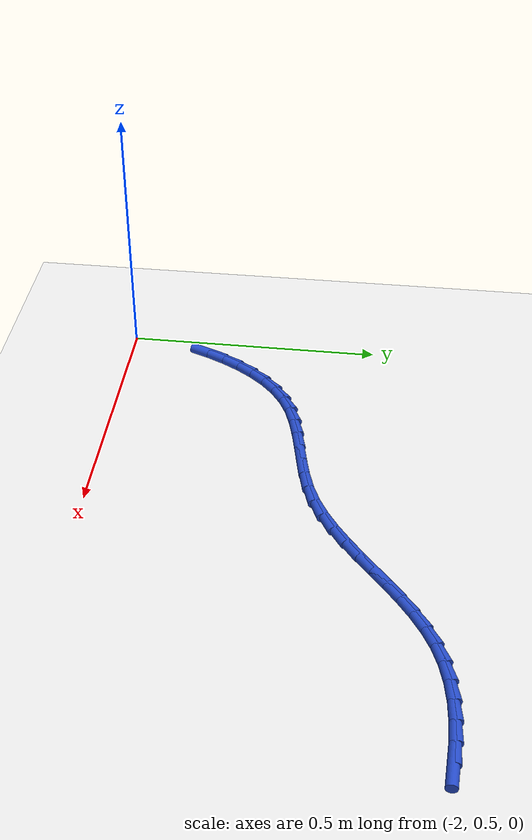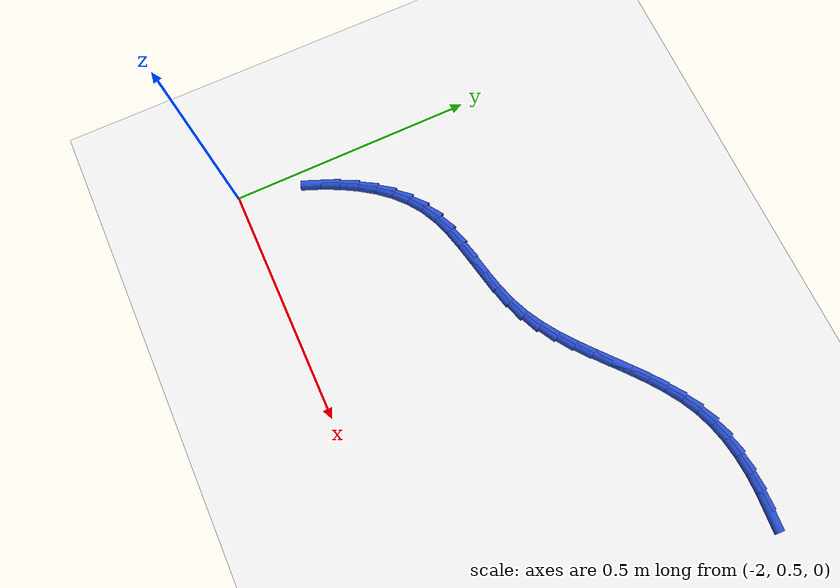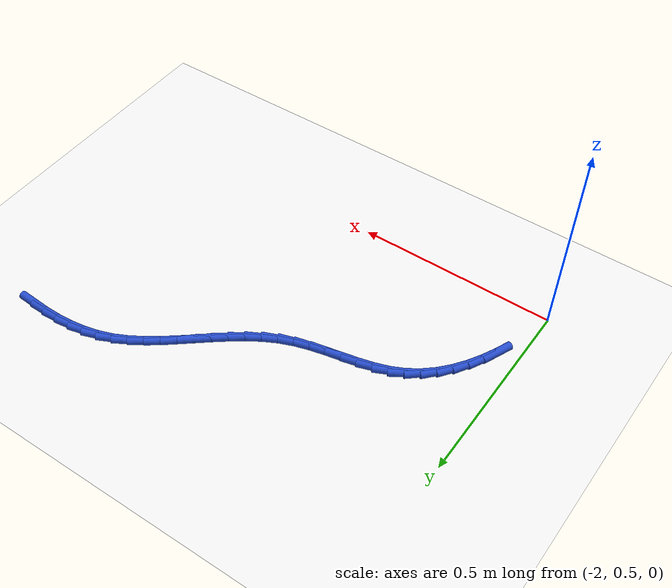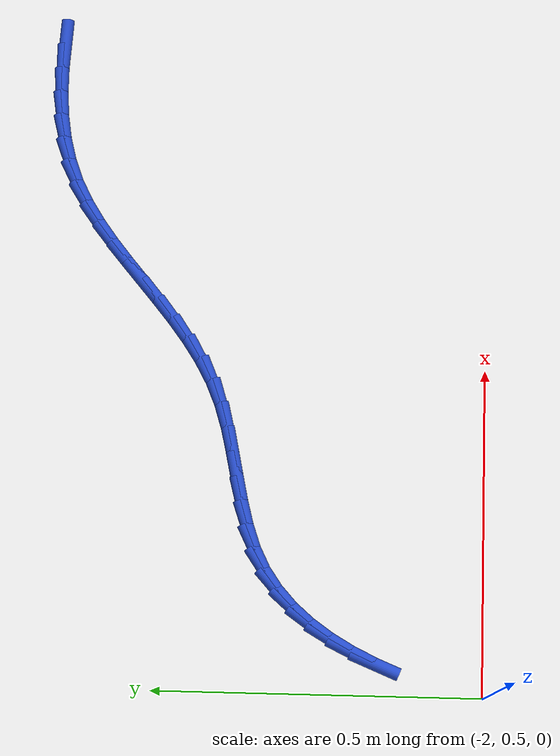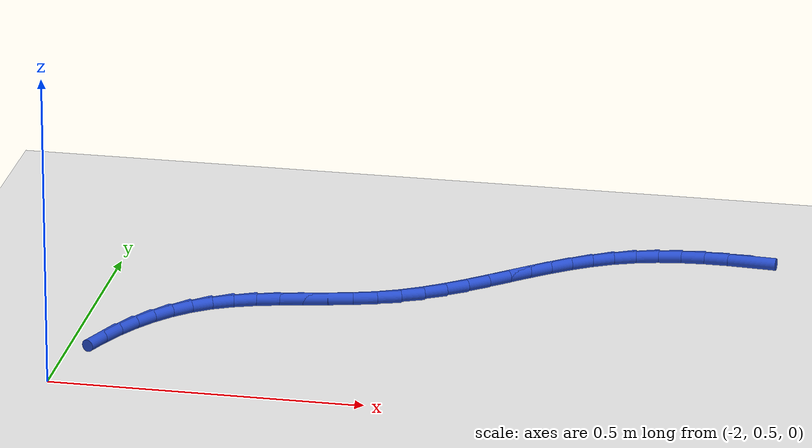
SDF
<sdf version="1.6">
 <world name="default">
  <model name="ground_plane">
   <static>1</static>
   <link name="link">
    <collision name="collision">
     <geometry><plane><normal>0 0 1</normal><size>100 100</size></plane></geometry>
     <surface><friction><ode><mu>100</mu><mu2>50</mu2></ode></friction></surface>
    </collision>
    <visual name="visual">
     <cast_shadows>0</cast_shadows>
     <geometry><plane><normal>0 0 1</normal><size>100 100</size></plane></geometry>
     <material>
      <script><uri>file://media/materials/scripts/gazebo.material</uri><name>Gazebo/WhiteGlow</name></script>
     </material>
    </visual>
   </link>
  </model>
  <model name="line">
   <link name="link_44">
    <pose>-0.9954234387250263 1.1660764728798085 0.01 0 1.57 -0.06486166840234169</pose>
    <collision name="collision">
     <geometry><cylinder><radius>0.01</radius><length>0.08</length></cylinder></geometry>
    </collision>
    <visual name="visual">
     <material>
      <script><name>Gazebo/Blue</name><uri>file://media/materials/scripts/gazebo.material</uri></script>
     </material>
     <geometry><cylinder><radius>0.01</radius><length>0.08</length></cylinder></geometry>
    </visual>
   </link>
   <link name="link_45">
    <pose>-1.0344334840674019 1.1686102837800652 0.01 0 1.57 -0.0035502411233002303</pose>
    <collision name="collision">
     <geometry><cylinder><radius>0.01</radius><length>0.08</length></cylinder></geometry>
    </collision>
    <visual name="visual">
     <material>
      <script><name>Gazebo/Blue</name><uri>file://media/materials/scripts/gazebo.material</uri></script>
     </material>
     <geometry><cylinder><radius>0.01</radius><length>0.08</length></cylinder></geometry>
    </visual>
   </link>
   <link name="link_46">
    <pose>-1.0730044384614992 1.1687472205438472 0.01 0 1.57 0.06829844971645511</pose>
    <collision name="collision">
     <geometry><cylinder><radius>0.01</radius><length>0.08</length></cylinder></geometry>
    </collision>
    <visual name="visual">
     <material>
      <script><name>Gazebo/Blue</name><uri>file://media/materials/scripts/gazebo.material</uri></script>
     </material>
     <geometry><cylinder><radius>0.01</radius><length>0.08</length></cylinder></geometry>
    </visual>
   </link>
   <link name="link_47">
    <pose>-1.1108783768783137 1.166156459656727 0.01 0 1.57 0.15184051075123225</pose>
    <collision name="collision">
     <geometry><cylinder><radius>0.01</radius><length>0.08</length></cylinder></geometry>
    </collision>
    <visual name="visual">
     <material>
      <script><name>Gazebo/Blue</name><uri>file://media/materials/scripts/gazebo.material</uri></script>
     </material>
     <geometry><cylinder><radius>0.01</radius><length>0.08</length></cylinder></geometry>
    </visual>
   </link>
   <link name="link_48">
    <pose>-1.1477973742888428 1.1605071776042777 0.01 0 1.57 0.24793115189143936</pose>
    <collision name="collision">
     <geometry><cylinder><radius>0.01</radius><length>0.08</length></cylinder></geometry>
    </collision>
    <visual name="visual">
     <material>
      <script><name>Gazebo/Blue</name><uri>file://media/materials/scripts/gazebo.material</uri></script>
     </material>
     <geometry><cylinder><radius>0.01</radius><length>0.08</length></cylinder></geometry>
    </visual>
   </link>
   <link name="link_49">
    <pose>-1.1835035056640846 1.1514685508720721 0.01 0 1.57 0.3567264596219374</pose>
    <collision name="collision">
     <geometry><cylinder><radius>0.01</radius><length>0.08</length></cylinder></geometry>
    </collision>
    <visual name="visual">
     <material>
      <script><name>Gazebo/Blue</name><uri>file://media/materials/scripts/gazebo.material</uri></script>
     </material>
     <geometry><cylinder><radius>0.01</radius><length>0.08</length></cylinder></geometry>
    </visual>
   </link>
   <link name="link_50">
    <pose>-1.2177389878769347 1.1387100101199863 0.01 0 1.57 0.4695098181031871</pose>
    <collision name="collision">
     <geometry><cylinder><radius>0.01</radius><length>0.08</length></cylinder></geometry>
    </collision>
    <visual name="visual">
     <material>
      <script><name>Gazebo/Blue</name><uri>file://media/materials/scripts/gazebo.material</uri></script>
     </material>
     <geometry><cylinder><radius>0.01</radius><length>0.08</length></cylinder></geometry>
    </visual>
   </link>
   <link name="link_51">
    <pose>-1.2503837736342907 1.1221476980645322 0.01 0 1.57 0.5623052165219564</pose>
    <collision name="collision">
     <geometry><cylinder><radius>0.01</radius><length>0.08</length></cylinder></geometry>
    </collision>
    <visual name="visual">
     <material>
      <script><name>Gazebo/Blue</name><uri>file://media/materials/scripts/gazebo.material</uri></script>
     </material>
     <geometry><cylinder><radius>0.01</radius><length>0.08</length></cylinder></geometry>
    </visual>
   </link>
   <link name="link_52">
    <pose>-1.2817127892395068 1.102405233069398 0.01 0 1.57 0.6308195380504196</pose>
    <collision name="collision">
     <geometry><cylinder><radius>0.01</radius><length>0.08</length></cylinder></geometry>
    </collision>
    <visual name="visual">
     <material>
      <script><name>Gazebo/Blue</name><uri>file://media/materials/scripts/gazebo.material</uri></script>
     </material>
     <geometry><cylinder><radius>0.01</radius><length>0.08</length></cylinder></geometry>
    </visual>
   </link>
   <link name="link_53">
    <pose>-1.312071316674275 1.0802322544007161 0.01 0 1.57 0.676117447491139</pose>
    <collision name="collision">
     <geometry><cylinder><radius>0.01</radius><length>0.08</length></cylinder></geometry>
    </collision>
    <visual name="visual">
     <material>
      <script><name>Gazebo/Blue</name><uri>file://media/materials/scripts/gazebo.material</uri></script>
     </material>
     <geometry><cylinder><radius>0.01</radius><length>0.08</length></cylinder></geometry>
    </visual>
   </link>
   <link name="link_54">
    <pose>-1.3418046379202897 1.056378401324617 0.01 0 1.57 0.6995397166441519</pose>
    <collision name="collision">
     <geometry><cylinder><radius>0.01</radius><length>0.08</length></cylinder></geometry>
    </collision>
    <visual name="visual">
     <material>
      <script><name>Gazebo/Blue</name><uri>file://media/materials/scripts/gazebo.material</uri></script>
     </material>
     <geometry><cylinder><radius>0.01</radius><length>0.08</length></cylinder></geometry>
    </visual>
   </link>
   <link name="link_55">
    <pose>-1.3712580349592447 1.0315933131072312 0.01 0 1.57 0.7020451840256093</pose>
    <collision name="collision">
     <geometry><cylinder><radius>0.01</radius><length>0.08</length></cylinder></geometry>
    </collision>
    <visual name="visual">
     <material>
      <script><name>Gazebo/Blue</name><uri>file://media/materials/scripts/gazebo.material</uri></script>
     </material>
     <geometry><cylinder><radius>0.01</radius><length>0.08</length></cylinder></geometry>
    </visual>
   </link>
   <link name="link_56">
    <pose>-1.4007767897728327 1.006626629014691 0.01 0 1.57 0.683944739497234</pose>
    <collision name="collision">
     <geometry><cylinder><radius>0.01</radius><length>0.08</length></cylinder></geometry>
    </collision>
    <visual name="visual">
     <material>
      <script><name>Gazebo/Blue</name><uri>file://media/materials/scripts/gazebo.material</uri></script>
     </material>
     <geometry><cylinder><radius>0.01</radius><length>0.08</length></cylinder></geometry>
    </visual>
   </link>
   <link name="link_57">
    <pose>-1.4307061843427482 0.9822279883131274 0.01 0 1.57 0.6448964484346191</pose>
    <collision name="collision">
     <geometry><cylinder><radius>0.01</radius><length>0.08</length></cylinder></geometry>
    </collision>
    <visual name="visual">
     <material>
      <script><name>Gazebo/Blue</name><uri>file://media/materials/scripts/gazebo.material</uri></script>
     </material>
     <geometry><cylinder><radius>0.01</radius><length>0.08</length></cylinder></geometry>
    </visual>
   </link>
   <link name="link_58">
    <pose>-1.4613915006506841 0.9591470302686711 0.01 0 1.57 0.5841293864301806</pose>
    <collision name="collision">
     <geometry><cylinder><radius>0.01</radius><length>0.08</length></cylinder></geometry>
    </collision>
    <visual name="visual">
     <material>
      <script><name>Gazebo/Blue</name><uri>file://media/materials/scripts/gazebo.material</uri></script>
     </material>
     <geometry><cylinder><radius>0.01</radius><length>0.08</length></cylinder></geometry>
    </visual>
   </link>
   <link name="link_59">
    <pose>-1.493178020678334 0.938133394147454 0.01 0 1.57 0.500958939303732</pose>
    <collision name="collision">
     <geometry><cylinder><radius>0.01</radius><length>0.08</length></cylinder></geometry>
    </collision>
    <visual name="visual">
     <material>
      <script><name>Gazebo/Blue</name><uri>file://media/materials/scripts/gazebo.material</uri></script>
     </material>
     <geometry><cylinder><radius>0.01</radius><length>0.08</length></cylinder></geometry>
    </visual>
   </link>
   <link name="link_60">
    <pose>-1.5264110264073911 0.9199367192156065 0.01 0 1.57 0.396356768364996</pose>
    <collision name="collision">
     <geometry><cylinder><radius>0.01</radius><length>0.08</length></cylinder></geometry>
    </collision>
    <visual name="visual">
     <material>
      <script><name>Gazebo/Blue</name><uri>file://media/materials/scripts/gazebo.material</uri></script>
     </material>
     <geometry><cylinder><radius>0.01</radius><length>0.08</length></cylinder></geometry>
    </visual>
   </link>
   <link name="link_61">
    <pose>-1.5614235335956679 0.9052837983302336 0.01 0 1.57 0.2966175268896997</pose>
    <collision name="collision">
     <geometry><cylinder><radius>0.01</radius><length>0.08</length></cylinder></geometry>
    </collision>
    <visual name="visual">
     <material>
      <script><name>Gazebo/Blue</name><uri>file://media/materials/scripts/gazebo.material</uri></script>
     </material>
     <geometry><cylinder><radius>0.01</radius><length>0.08</length></cylinder></geometry>
    </visual>
   </link>
   <link name="link_62">
    <pose>-1.5981038096124809 0.8940730599149108 0.01 0 1.57 0.2322920167530408</pose>
    <collision name="collision">
     <geometry><cylinder><radius>0.01</radius><length>0.08</length></cylinder></geometry>
    </collision>
    <visual name="visual">
     <material>
      <script><name>Gazebo/Blue</name><uri>file://media/materials/scripts/gazebo.material</uri></script>
     </material>
     <geometry><cylinder><radius>0.01</radius><length>0.08</length></cylinder></geometry>
    </visual>
   </link>
   <link name="link_63">
    <pose>-1.6357802918718656 0.8851602232215176 0.01 0 1.57 0.20327832543353014</pose>
    <collision name="collision">
     <geometry><cylinder><radius>0.01</radius><length>0.08</length></cylinder></geometry>
    </collision>
    <visual name="visual">
     <material>
      <script><name>Gazebo/Blue</name><uri>file://media/materials/scripts/gazebo.material</uri></script>
     </material>
     <geometry><cylinder><radius>0.01</radius><length>0.08</length></cylinder></geometry>
    </visual>
   </link>
   <link name="link_64">
    <pose>-1.673745752484389 0.8773345792254784 0.01 0 1.57 0.20863043023930025</pose>
    <collision name="collision">
     <geometry><cylinder><radius>0.01</radius><length>0.08</length></cylinder></geometry>
    </collision>
    <visual name="visual">
     <material>
      <script><name>Gazebo/Blue</name><uri>file://media/materials/scripts/gazebo.material</uri></script>
     </material>
     <geometry><cylinder><radius>0.01</radius><length>0.08</length></cylinder></geometry>
    </visual>
   </link>
   <link name="link_65">
    <pose>-1.7112929635606184 0.8693854189022184 0.01 0 1.57 0.2495718267902497</pose>
    <collision name="collision">
     <geometry><cylinder><radius>0.01</radius><length>0.08</length></cylinder></geometry>
    </collision>
    <visual name="visual">
     <material>
      <script><name>Gazebo/Blue</name><uri>file://media/materials/scripts/gazebo.material</uri></script>
     </material>
     <geometry><cylinder><radius>0.01</radius><length>0.08</length></cylinder></geometry>
    </visual>
   </link>
   <link name="link_66">
    <pose>-1.7477146972111215 0.8601020332271623 0.01 0 1.57 0.32950098253120236</pose>
    <collision name="collision">
     <geometry><cylinder><radius>0.01</radius><length>0.08</length></cylinder></geometry>
    </collision>
    <visual name="visual">
     <material>
      <script><name>Gazebo/Blue</name><uri>file://media/materials/scripts/gazebo.material</uri></script>
     </material>
     <geometry><cylinder><radius>0.01</radius><length>0.08</length></cylinder></geometry>
    </visual>
   </link>
   <link name="link_67">
    <pose>-1.7823037255464649 0.848273713175735 0.01 0 1.57 0.4520616141428894</pose>
    <collision name="collision">
     <geometry><cylinder><radius>0.01</radius><length>0.08</length></cylinder></geometry>
    </collision>
    <visual name="visual">
     <material>
      <script><name>Gazebo/Blue</name><uri>file://media/materials/scripts/gazebo.material</uri></script>
     </material>
     <geometry><cylinder><radius>0.01</radius><length>0.08</length></cylinder></geometry>
    </visual>
   </link>
   <link name="link_68">
    <pose>-1.814361763759925 0.8327063208543125 0.01 0 1.57 0.5968548320473388</pose>
    <collision name="collision">
     <geometry><cylinder><radius>0.01</radius><length>0.08</length></cylinder></geometry>
    </collision>
    <visual name="visual">
     <material>
      <script><name>Gazebo/Blue</name><uri>file://media/materials/scripts/gazebo.material</uri></script>
     </material>
     <geometry><cylinder><radius>0.01</radius><length>0.08</length></cylinder></geometry>
    </visual>
   </link>
   <link name="link_69">
    <pose>-1.843550098198648 0.812871987582124 0.01 0 1.57 0.7316030867968547</pose>
    <collision name="collision">
     <geometry><cylinder><radius>0.01</radius><length>0.08</length></cylinder></geometry>
    </collision>
    <visual name="visual">
     <material>
      <script><name>Gazebo/Blue</name><uri>file://media/materials/scripts/gazebo.material</uri></script>
     </material>
     <geometry><cylinder><radius>0.01</radius><length>0.08</length></cylinder></geometry>
    </visual>
   </link>
   <link name="link_70">
    <pose>-1.8700041194943762 0.7891213386429766 0.01 0 1.57 0.851172405851625</pose>
    <collision name="collision">
     <geometry><cylinder><radius>0.01</radius><length>0.08</length></cylinder></geometry>
    </collision>
    <visual name="visual">
     <material>
      <script><name>Gazebo/Blue</name><uri>file://media/materials/scripts/gazebo.material</uri></script>
     </material>
     <geometry><cylinder><radius>0.01</radius><length>0.08</length></cylinder></geometry>
    </visual>
   </link>
   <link name="link_71">
    <pose>-1.8938916184346726 0.7618650353554957 0.01 0 1.57 0.954720301512632</pose>
    <collision name="collision">
     <geometry><cylinder><radius>0.01</radius><length>0.08</length></cylinder></geometry>
    </collision>
    <visual name="visual">
     <material>
      <script><name>Gazebo/Blue</name><uri>file://media/materials/scripts/gazebo.material</uri></script>
     </material>
     <geometry><cylinder><radius>0.01</radius><length>0.08</length></cylinder></geometry>
    </visual>
   </link>
   <link name="link_72">
    <pose>-1.915380385807099 0.731513739038308 0.01 0 1.57 1.043014550861219</pose>
    <collision name="collision">
     <geometry><cylinder><radius>0.01</radius><length>0.08</length></cylinder></geometry>
    </collision>
    <visual name="visual">
     <material>
      <script><name>Gazebo/Blue</name><uri>file://media/materials/scripts/gazebo.material</uri></script>
     </material>
     <geometry><cylinder><radius>0.01</radius><length>0.08</length></cylinder></geometry>
    </visual>
   </link>
   <link name="link_73">
    <pose>-1.9346382123992183 0.6984781110100386 0.01 0 1.57 1.1176244868157734</pose>
    <collision name="collision">
     <geometry><cylinder><radius>0.01</radius><length>0.08</length></cylinder></geometry>
    </collision>
    <visual name="visual">
     <material>
      <script><name>Gazebo/Blue</name><uri>file://media/materials/scripts/gazebo.material</uri></script>
     </material>
     <geometry><cylinder><radius>0.01</radius><length>0.08</length></cylinder></geometry>
    </visual>
   </link>
   <link name="link_74">
    <pose>-1.9518328889985916 0.663168812589313 0.01 0 1.57 1.1803486239143872</pose>
    <collision name="collision">
     <geometry><cylinder><radius>0.01</radius><length>0.08</length></cylinder></geometry>
    </collision>
    <visual name="visual">
     <material>
      <script><name>Gazebo/Blue</name><uri>file://media/materials/scripts/gazebo.material</uri></script>
     </material>
     <geometry><cylinder><radius>0.01</radius><length>0.08</length></cylinder></geometry>
    </visual>
   </link>
  </model>
 </world>
</sdf>
